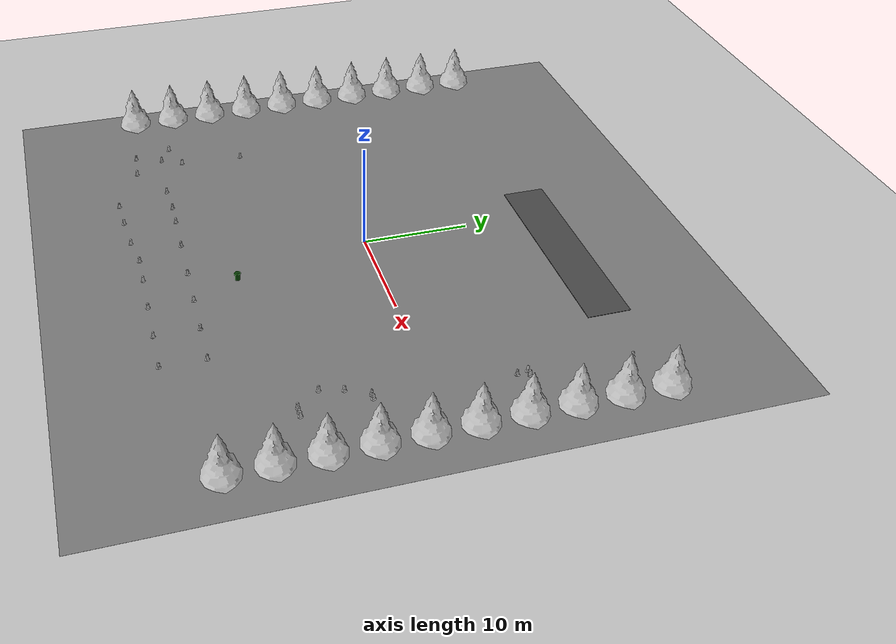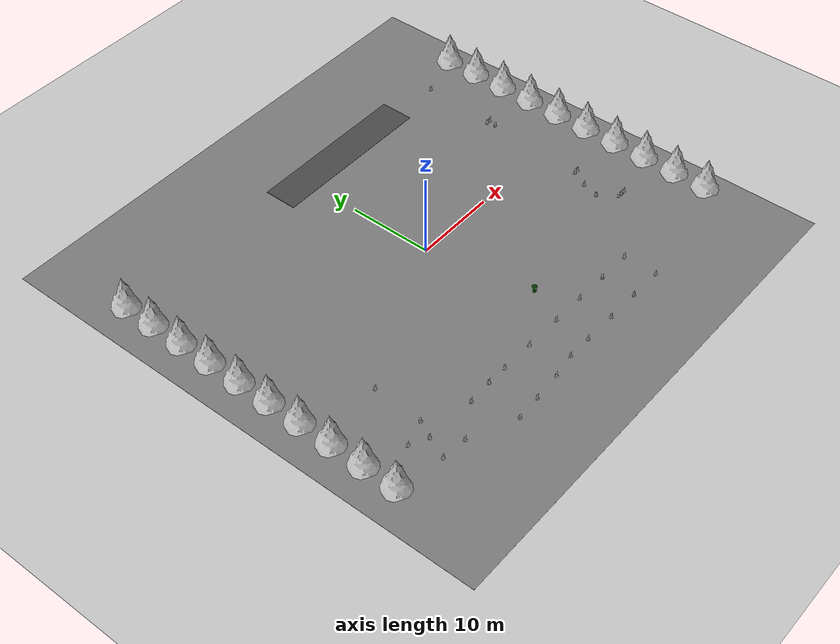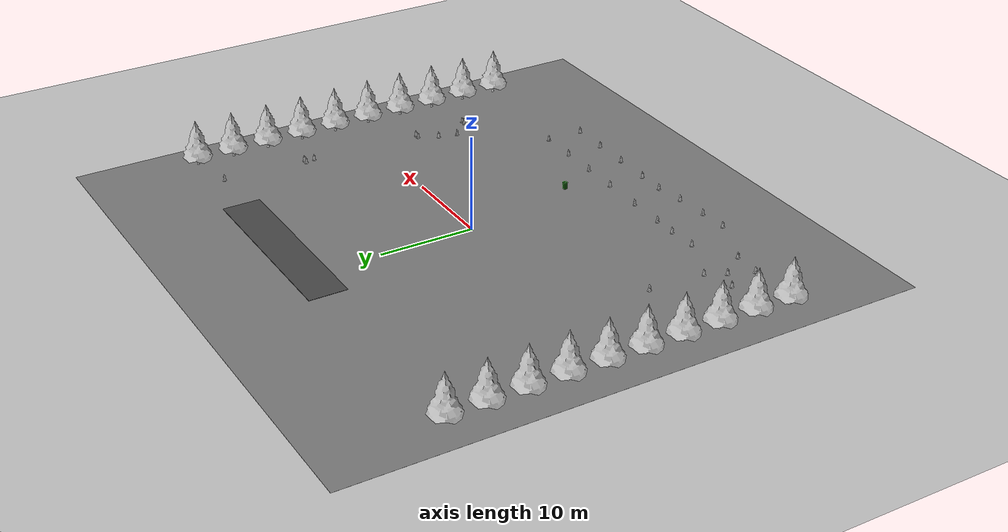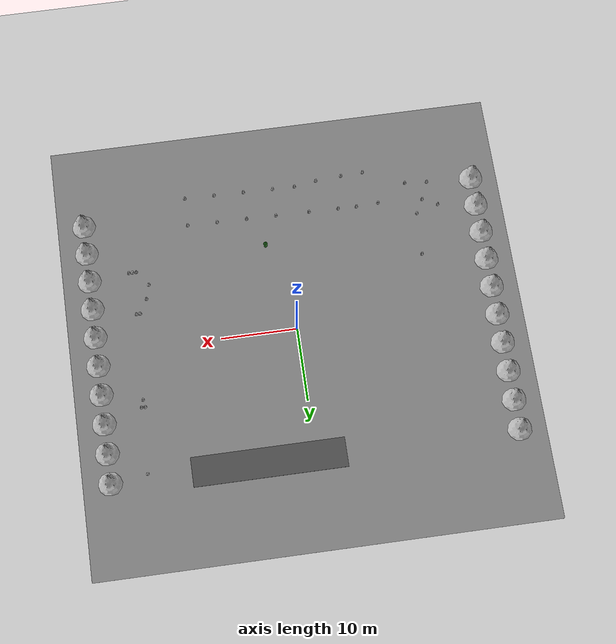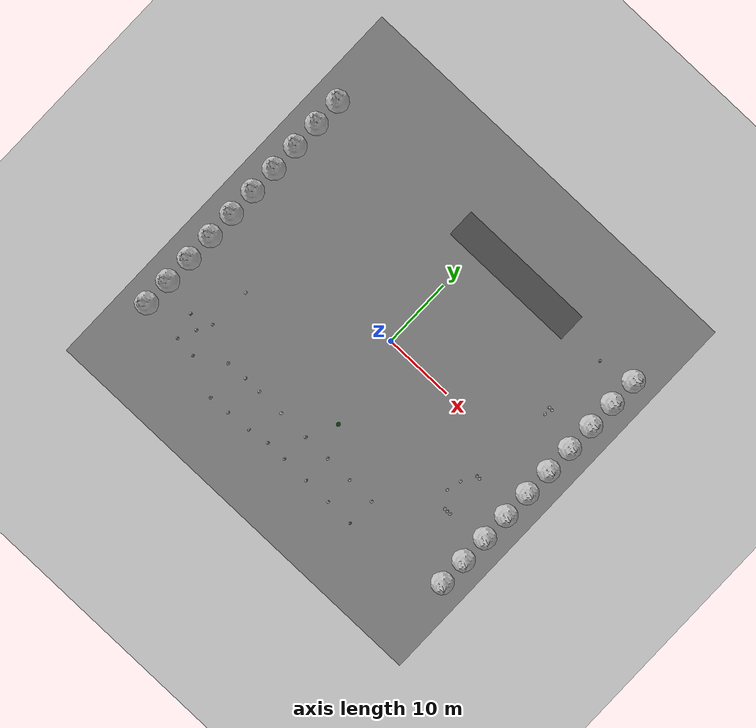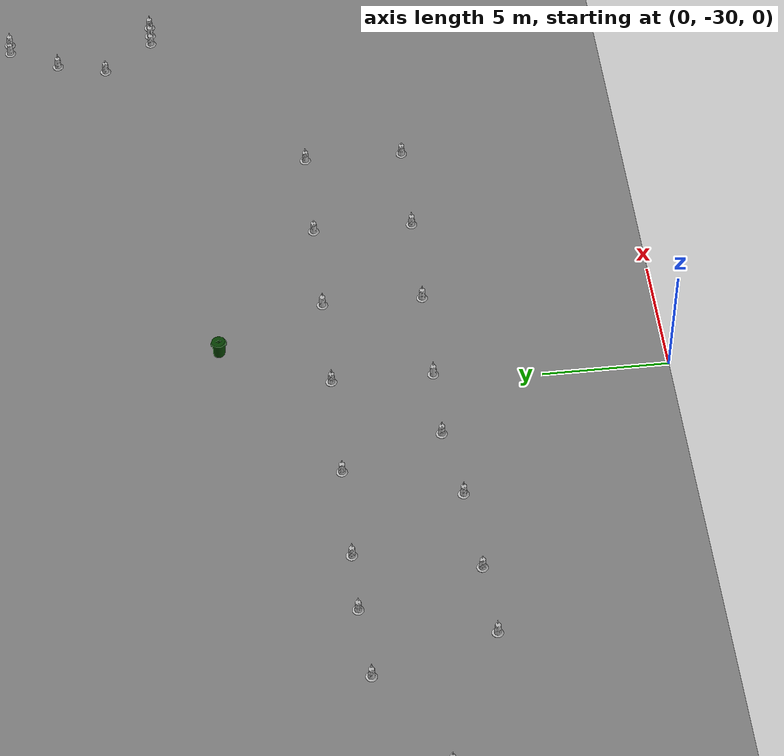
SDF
<sdf version="1.7">
 <world name="default">
  <scene><ambient>1 1 1</ambient><grid>false</grid></scene>
  <frame name="igvc_frame"><pose relative_to="world">-2.5 17.2 0 0 0 3.1415</pose></frame>
  <spherical_coordinates>
   <surface_model>EARTH_WGS84</surface_model>
   <world_frame_orientation>ENU</world_frame_orientation>
   <latitude_deg>42.66791</latitude_deg>
   <longitude_deg>-83.21958</longitude_deg>
   <elevation>286</elevation>
   <heading_deg>0</heading_deg>
  </spherical_coordinates>
  <physics name="1ms" type="ODE">
   <max_step_size>0.017</max_step_size>
   <real_time_factor>1.0</real_time_factor>
   <dart><collision_detector>bullet</collision_detector><solver><solver_type>pgs</solver_type></solver></dart>
  </physics>
  <plugin filename="gz-sim-physics-system" name="gz::sim::systems::Physics"/>
  <plugin filename="gz-sim-user-commands-system" name="gz::sim::systems::UserCommands"/>
  <plugin filename="gz-sim-scene-broadcaster-system" name="gz::sim::systems::SceneBroadcaster"/>
  <plugin filename="gz-sim-contact-system" name="gz::sim::systems::Contact"/>
  <plugin filename="gz-sim-imu-system" name="gz::sim::systems::Imu"/>
  <plugin filename="gz-sim-navsat-system" name="gz::sim::systems::NavSat"/>
  <include>
   <uri>model://ground_plane</uri>
   <name>Ground Plane</name>
   <pose relative_to="igvc_frame">0 0 0 0 0 0</pose>
  </include>
  <include>
   <uri>model://first_2015_trash_can</uri>
   <name>Trash Can</name>
   <pose relative_to="igvc_frame">2.5 -12.5 0 0 0 -3.1415</pose>
  </include>
  <include>
   <uri>model://igvc_track</uri>
   <name>IGVC Track</name>
   <pose relative_to="igvc_frame">0 0 0 0 0 0</pose>
  </include>
  <include>
   <uri>model://ramp</uri>
   <name>Ramp</name>
   <pose relative_to="igvc_frame">6.0 17.5 0 0 0 -3.1415</pose>
  </include>
  <model name="pine_tree_group1">
   <static>1</static>
   <pose relative_to="igvc_frame">-23.3924 26.8591 0 0 0 0</pose>
   <include><uri>model://pine_tree</uri><name>Pine_Tree_0</name><pose>-3 -9 0 0 0 -1.5708</pose></include>
   <include><uri>model://pine_tree</uri><name>Pine_Tree_1</name><pose>-3 -13 0 0 0 -1.5708</pose></include>
   <include><uri>model://pine_tree</uri><name>Pine_Tree_2</name><pose>-3 -17 0 0 0 -1.5708</pose></include>
   <include><uri>model://pine_tree</uri><name>Pine_Tree_3</name><pose>-3 -21 0 0 0 -1.5708</pose></include>
   <include><uri>model://pine_tree</uri><name>Pine_Tree_4</name><pose>-3 -25 0 0 0 -1.5708</pose></include>
   <include><uri>model://pine_tree</uri><name>Pine_Tree_5</name><pose>-3 -29 0 0 0 -1.5708</pose></include>
   <include><uri>model://pine_tree</uri><name>Pine_Tree_6</name><pose>-3 -33 0 0 0 -1.5708</pose></include>
   <include><uri>model://pine_tree</uri><name>Pine_Tree_7</name><pose>-3 -37 0 0 0 -1.5708</pose></include>
   <include><uri>model://pine_tree</uri><name>Pine_Tree_8</name><pose>-3 -41 0 0 0 -1.5708</pose></include>
   <include><uri>model://pine_tree</uri><name>Pine_Tree_9</name><pose>-3 -45 0 0 0 -1.5708</pose></include>
  </model>
  <model name="pine_tree_group2">
   <static>1</static>
   <pose relative_to="igvc_frame">29.3924 26.8591 0 0 0 0</pose>
   <include><uri>model://pine_tree</uri><name>Pine_Tree_0</name><pose>-3 -9 0 0 0 -1.5708</pose></include>
   <include><uri>model://pine_tree</uri><name>Pine_Tree_1</name><pose>-3 -13 0 0 0 -1.5708</pose></include>
   <include><uri>model://pine_tree</uri><name>Pine_Tree_2</name><pose>-3 -17 0 0 0 -1.5708</pose></include>
   <include><uri>model://pine_tree</uri><name>Pine_Tree_3</name><pose>-3 -21 0 0 0 -1.5708</pose></include>
   <include><uri>model://pine_tree</uri><name>Pine_Tree_4</name><pose>-3 -25 0 0 0 -1.5708</pose></include>
   <include><uri>model://pine_tree</uri><name>Pine_Tree_5</name><pose>-3 -29 0 0 0 -1.5708</pose></include>
   <include><uri>model://pine_tree</uri><name>Pine_Tree_6</name><pose>-3 -33 0 0 0 -1.5708</pose></include>
   <include><uri>model://pine_tree</uri><name>Pine_Tree_7</name><pose>-3 -37 0 0 0 -1.5708</pose></include>
   <include><uri>model://pine_tree</uri><name>Pine_Tree_8</name><pose>-3 -41 0 0 0 -1.5708</pose></include>
   <include><uri>model://pine_tree</uri><name>Pine_Tree_9</name><pose>-3 -45 0 0 0 -1.5708</pose></include>
  </model>
  <model name="construction_barrels_group">
   <static>1</static>
   <pose relative_to="igvc_frame">15.3924 -3.1409 0 0 0 1.5625</pose>
   <link name="link">
    <pose>-2.8924 -7.3591 0 0 0 -1.5792</pose>
    <inertial>
     <mass>1.0</mass>
     <inertia><ixx>1.0</ixx><ixy>0.0</ixy><ixz>0.0</ixz><iyy>1.0</iyy><iyz>0.0</iyz><izz>1.0</izz></inertia>
    </inertial>
   </link>
   <include>
    <uri>model://construction_barrel</uri>
    <static>true</static>
    <name>Construction_Barrel</name>
    <pose>-13.6357 23.2323 0 0 0 -1.5792</pose>
   </include>
   <include>
    <uri>model://construction_barrel</uri>
    <static>true</static>
    <name>Construction_Barrel_0</name>
    <pose>-16.0307 35.7528 0 0 0 -1.5792</pose>
   </include>
   <include>
    <uri>model://construction_barrel</uri>
    <static>true</static>
    <name>Construction_Barrel_1</name>
    <pose>-18.4272 24.2726 0 0 0 -1.5792</pose>
   </include>
   <include>
    <uri>model://construction_barrel</uri>
    <static>true</static>
    <name>Construction_Barrel_2</name>
    <pose>-11.5476 33.7151 0 0 0 -1.5792</pose>
   </include>
   <include>
    <uri>model://construction_barrel</uri>
    <static>true</static>
    <name>Construction_Barrel_3</name>
    <pose>-12.5224 36.7234 0 0 0 -1.5792</pose>
   </include>
   <include>
    <uri>model://construction_barrel</uri>
    <static>true</static>
    <name>Construction_Barrel_4</name>
    <pose>-13.5391 34.7318 0 0 0 -1.5792</pose>
   </include>
   <include>
    <uri>model://construction_barrel</uri>
    <static>true</static>
    <name>Construction_Barrel_5</name>
    <pose>-18.602 27.2741 0 0 0 -1.5792</pose>
   </include>
   <include>
    <uri>model://construction_barrel</uri>
    <static>true</static>
    <name>Construction_Barrel_6</name>
    <pose>-17.8079 2.76661 0 0 0 -1.5792</pose>
   </include>
   <include>
    <uri>model://construction_barrel</uri>
    <static>true</static>
    <name>Construction_Barrel_7</name>
    <pose>-18.1566 20.7701 0 0 0 -1.5792</pose>
   </include>
   <include>
    <uri>model://construction_barrel</uri>
    <static>true</static>
    <name>Construction_Barrel_8</name>
    <pose>-17.707 14.7661 0 0 0 -1.5792</pose>
   </include>
   <include>
    <uri>model://construction_barrel</uri>
    <static>true</static>
    <name>Construction_Barrel_9</name>
    <pose>-5.54936 33.4647 0 0 0 -1.5792</pose>
   </include>
   <include>
    <uri>model://construction_barrel</uri>
    <static>true</static>
    <name>Construction_Barrel_10</name>
    <pose>-13.6694 19.2324 0 0 0 -1.5792</pose>
   </include>
   <include>
    <uri>model://construction_barrel</uri>
    <static>true</static>
    <name>Construction_Barrel_11</name>
    <pose>-13.7895 28.7337 0 0 0 -1.5792</pose>
   </include>
   <include>
    <uri>model://construction_barrel</uri>
    <static>true</static>
    <name>Construction_Barrel_12</name>
    <pose>-16.2559 32.7546 0 0 0 -1.5792</pose>
   </include>
   <include>
    <uri>model://construction_barrel</uri>
    <static>true</static>
    <name>Construction_Barrel_13</name>
    <pose>-7.8796 -5.81719 0 0 0 -1.5792</pose>
   </include>
   <include>
    <uri>model://construction_barrel</uri>
    <static>true</static>
    <name>Construction_Barrel_14</name>
    <pose>-13.6148 25.7321 0 0 0 -1.5792</pose>
   </include>
   <include>
    <uri>model://construction_barrel</uri>
    <static>true</static>
    <name>Construction_Barrel_15</name>
    <pose>-1.87559 -5.3676 0 0 0 -1.5792</pose>
   </include>
   <include>
    <uri>model://construction_barrel</uri>
    <static>true</static>
    <name>Construction_Barrel_16</name>
    <pose>-5.85869 -3.3341 0 0 0 -1.5792</pose>
   </include>
   <include>
    <uri>model://construction_barrel</uri>
    <static>true</static>
    <name>Construction_Barrel_17</name>
    <pose>-13.7072 14.7325 0 0 0 -1.5792</pose>
   </include>
   <include>
    <uri>model://construction_barrel</uri>
    <static>true</static>
    <name>Construction_Barrel_18</name>
    <pose>-7.8754 -5.31719 0 0 0 -1.5792</pose>
   </include>
   <include>
    <uri>model://construction_barrel</uri>
    <static>true</static>
    <name>Construction_Barrel_19</name>
    <pose>10.1223 -5.66841 0 0 0 -1.5792</pose>
   </include>
   <include>
    <uri>model://construction_barrel</uri>
    <static>true</static>
    <name>Construction_Barrel_20</name>
    <pose>20.1194 -6.05242 0 0 0 -1.5792</pose>
   </include>
   <include>
    <uri>model://construction_barrel</uri>
    <static>true</static>
    <name>Construction_Barrel_21</name>
    <pose>-17.7406 10.7663 0 0 0 -1.5792</pose>
   </include>
   <include>
    <uri>model://construction_barrel</uri>
    <static>true</static>
    <name>Construction_Barrel_22</name>
    <pose>-1.87139 -4.8676 0 0 0 -1.5792</pose>
   </include>
   <include>
    <uri>model://construction_barrel</uri>
    <static>true</static>
    <name>Construction_Barrel_23</name>
    <pose>11.1197 -5.97681 0 0 0 -1.5792</pose>
   </include>
   <include>
    <uri>model://construction_barrel</uri>
    <static>true</static>
    <name>Construction_Barrel_24</name>
    <pose>-7.8712 -4.81719 0 0 0 -1.5792</pose>
   </include>
   <include>
    <uri>model://construction_barrel</uri>
    <static>true</static>
    <name>Construction_Barrel_25</name>
    <pose>-17.6818 17.766 0 0 0 -1.5792</pose>
   </include>
   <include>
    <uri>model://construction_barrel</uri>
    <static>true</static>
    <name>Construction_Barrel_26</name>
    <pose>11.1239 -5.47681 0 0 0 -1.5792</pose>
   </include>
   <include>
    <uri>model://construction_barrel</uri>
    <static>true</static>
    <name>Construction_Barrel_27</name>
    <pose>-13.808 2.73291 0 0 0 -1.5792</pose>
   </include>
   <include>
    <uri>model://construction_barrel</uri>
    <static>true</static>
    <name>Construction_Barrel_28</name>
    <pose>-13.7408 10.7327 0 0 0 -1.5792</pose>
   </include>
   <include>
    <uri>model://construction_barrel</uri>
    <static>true</static>
    <name>Construction_Barrel_29</name>
    <pose>-3.86296 -3.8508 0 0 0 -1.5792</pose>
   </include>
   <include>
    <uri>model://construction_barrel</uri>
    <static>true</static>
    <name>Construction_Barrel_30</name>
    <pose>-13.7744 6.73282 0 0 0 -1.5792</pose>
   </include>
   <include>
    <uri>model://construction_barrel</uri>
    <static>true</static>
    <name>Construction_Barrel_31</name>
    <pose>-17.7743 6.76633 0 0 0 -1.5792</pose>
   </include>
  </model>
  <light name="sun" type="directional">
   <pose>0 0 10 0 -0 0</pose>
   <diffuse>0.8 0.8 0.8 1</diffuse>
   <specular>0.2 0.2 0.2 1</specular>
   <attenuation>
    <range>1000</range>
    <constant>0.9</constant>
    <linear>0.01</linear>
    <quadratic>0.001</quadratic>
   </attenuation>
   <direction>-0.5 0.1 -0.9</direction>
   <spot><inner_angle>0</inner_angle><outer_angle>0</outer_angle><falloff>0</falloff></spot>
  </light>
  <gravity>0 0 -9.8</gravity>
  <magnetic_field>6e-06 2.3e-05 -4.2e-05</magnetic_field>
  <atmosphere type="adiabatic"/>
  <physics type="ode">
   <max_step_size>0.001</max_step_size>
   <real_time_factor>1</real_time_factor>
   <real_time_update_rate>1000</real_time_update_rate>
  </physics>
  <scene><ambient>0.7 0.7 0.7 1</ambient><background>0.8 0.8 0.8  1</background><shadows>1</shadows></scene>
 </world>
</sdf>

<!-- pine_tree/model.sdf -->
<sdf version="1.6">
  <model name="pine_tree">
    <static>true</static>
    <link name="link">
      <collision name="collision">
        <geometry>
          <mesh>
            <uri>file://isr-testbed/pine_tree/meshes/pine_tree.dae</uri>
          </mesh>
        </geometry>
      </collision>
      <visual name="branch">
        <geometry>
          <mesh>
            <uri>file://isr-testbed/pine_tree/meshes/pine_tree.dae</uri>
            <submesh>
              <name>Branch</name>
            </submesh>
          </mesh>
        </geometry>
        <material>
          <script>
            <uri>file://isr-testbed/pine_tree/materials/scripts/</uri>
            <uri>file://isr-testbed/pine_tree/materials/textures/</uri>
            <name>PineTree/Branch</name>
          </script>
        </material>
      </visual>
      <visual name="bark">
        <geometry>
          <mesh>
            <uri>file://isr-testbed/pine_tree/meshes/pine_tree.dae</uri>
            <submesh>
              <name>Bark</name>
            </submesh>
          </mesh>
        </geometry>
        <material>
          <script>
            <uri>file://isr-testbed/pine_tree/materials/scripts/</uri>
            <uri>file://isr-testbed/pine_tree/materials/textures/</uri>
            <name>PineTree/Bark</name>
          </script>
        </material>
      </visual>
    </link>
  </model>
</sdf>

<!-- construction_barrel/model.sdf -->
<sdf version="1.5">
  <model name="Construction Barrel">
    <link name="link">
      <inertial>
        <pose>0 0 0.4 0 0 0</pose>
        <mass>500</mass>
        <inertia>
          <ixx>51.2096</ixx>
          <iyy>51.2096</iyy>
          <izz>25</izz>
          <ixy>0</ixy>
          <ixz>0</ixz>
        </inertia>
      </inertial>
      <collision name="collision">
        <geometry>
          <mesh>
            <uri>model://../model_source/models/construction_barrel/meshes/construction_barrel.dae</uri>
          </mesh>
        </geometry>
      </collision>
      <visual name="visual">
        <geometry>
          <mesh>
            <uri>model://../model_source/models/construction_barrel/meshes/construction_barrel.dae</uri>
          </mesh>
        </geometry>
      </visual>
    </link>
  </model>
</sdf>

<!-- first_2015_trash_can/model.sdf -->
<sdf version="1.5">
  <model name="first_2015_trash_can">
    <link name="link">
      <inertial>
        <pose>0 0 0.3683 0 0 0</pose>
        <mass>4.83076</mass>
        <inertia>
          <ixx>0.281534052</ixx>
          <ixy>0</ixy>
          <ixz>0</ixz>
          <iyy>0.281534052</iyy>
          <iyz>0</iyz>
          <izz>0.126222831</izz>
        </inertia>
      </inertial>

      <visual name="visual">
        <geometry>
          <mesh>
            <uri>model://first_2015_trash_can/meshes/trash_can.dae</uri>
          </mesh>
        </geometry>
      </visual>

      <collision name="collision">
        <geometry>
          <mesh>
            <uri>model://first_2015_trash_can/meshes/trash_can.dae</uri>
          </mesh>
        </geometry>
      </collision>
    </link>
  </model>
</sdf>

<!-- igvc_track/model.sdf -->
<sdf version="1.9">
  <model name="igvc_track">
    <static>true</static>
    <link name="link">
      <visual name="visual">
        <cast_shadows>false</cast_shadows>
        <geometry>
          <box>
            <size>60 60 .005</size>
          </box>
        </geometry>
        <material>
          <ambient>0.5 0.5 0.5 1.0</ambient>
          <diffuse>0.5 0.5 0.5 1.0</diffuse>
          <specular>0.2 0.2 0.2 1.0</specular>
          <pbr>
            <metal>
              <albedo_map>model://igvc_track/textures/ground_surface/tarmac2.png</albedo_map>
              <roughness>0.8</roughness>
              <metalness>0.0</metalness>
            </metal>
          </pbr>
        </material>
      </visual>
    </link>
    <link name="link2">
      <pose>0 0 0.006 0 0 0</pose>
      <visual name="visual">
        <cast_shadows>false</cast_shadows>
        <geometry>
          <box>
            <size>60 60 .001</size>
          </box>
        </geometry>
        <material>
          <diffuse>0.5 0.5 0.5 1.0</diffuse>
          <ambient>0.5 0.5 0.5 1.0</ambient>
          <specular>0.2 0.2 0.2 1.0</specular>
          <pbr>
            <metal>
              <albedo_map>model://igvc_track/textures/course/track_floor3.png</albedo_map>
              <roughness>0.8</roughness>
              <metalness>0.0</metalness>
            </metal>
          </pbr>
          <render_order>1</render_order>
          <uv_map>
            <scale>1.0 1.0</scale>
          </uv_map>
        </material>
      </visual>
    </link>
  </model>
</sdf>

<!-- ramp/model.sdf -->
<sdf version="1.4">
  <model name="ramp">
    <static>true</static>
    <pose>0 0 0.2 0 0.15 0</pose>
    <link name="link">
      <collision name="collision">
        <geometry>
          <box>
            <size>20 4 .1</size>
          </box>
        </geometry>
      </collision>
      <visual name="visual">
        <geometry>
          <box>
            <size>20 4 .1</size>
          </box>
        </geometry>
        <material>
          <script>
            <uri>model://asphalt_plane/materials/scripts/asphalt.material</uri>
            <name>vrc/asphalt</name>
          </script>
        </material>
      </visual>
    </link>
  </model>
</sdf>
